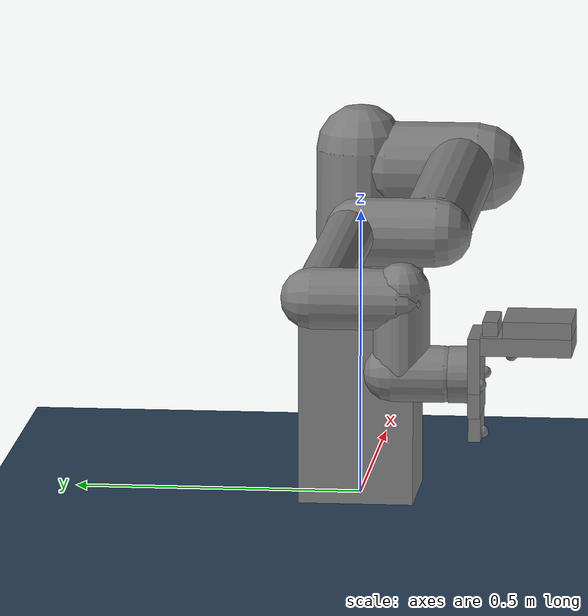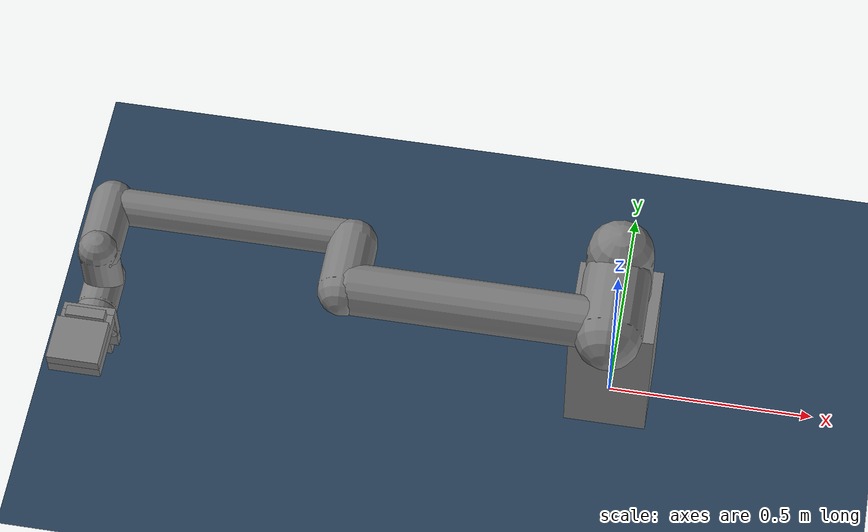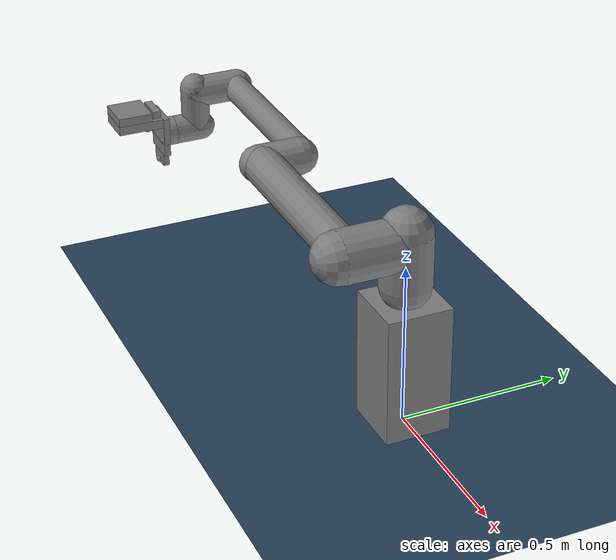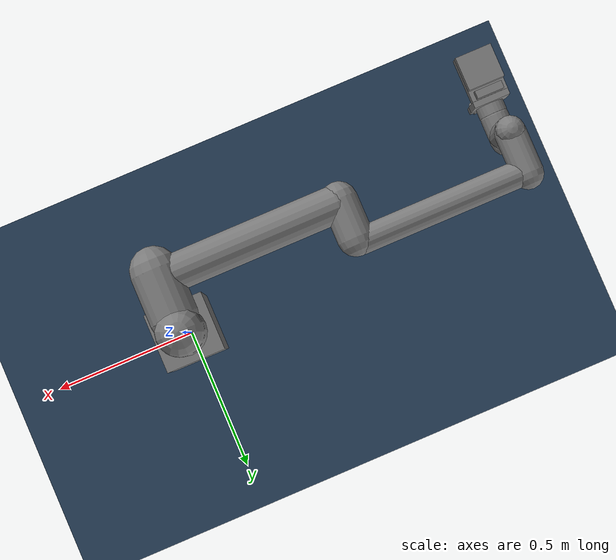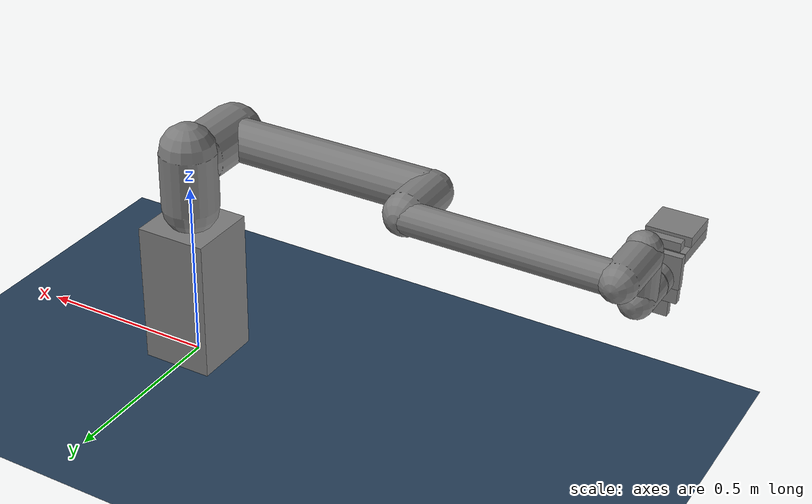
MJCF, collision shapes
<mujoco model="ur10e">
  <compiler angle="radian" meshdir="assets" autolimits="true"/>

  <option integrator="implicitfast" actuatorgroupdisable="1 2"/>

  <default>
    <default class="ur10e">
      <material specular="0.5" shininess="0.25"/>
      <joint axis="0 1 0" range="-6.28319 6.28319" armature="0.1"/>

      <default class="size4">
        <joint damping="10"/>

      </default>
      <default class="size3">
        <joint damping="5"/>

        <default class="size3_limited">
          <joint range="-3.1415 3.1415"/>

        </default>
      </default>
      <default class="size2">
        <joint damping="2"/>

      </default>
      <default class="visual">
        <geom type="mesh" contype="0" conaffinity="0" group="2"/>
      </default>
      <default class="collision">
        <geom type="capsule" group="3"/>
        <default class="eef_collision">
          <geom type="cylinder"/>
        </default>
      </default>
      <site size="0.001" rgba="0.5 0.5 0.5 0.3" group="4"/>
    </default>
  </default>

  <asset>
    <material class="ur10e" name="black" rgba="0.033 0.033 0.033 1"/>
    <material class="ur10e" name="jointgray" rgba="0.278 0.278 0.278 1"/>
    <material class="ur10e" name="linkgray" rgba="0.82 0.82 0.82 1"/>
    <material class="ur10e" name="urblue" rgba="0.49 0.678 0.8 1"/>

    <texture name="grid" type="2d" builtin="checker" width="512" height="512" rgb1=".1 .2 .3" rgb2=".2 .3 .4"/>
    <material name="grid" texture="grid" texrepeat="1 1" texuniform="true" reflectance=".2"/>

    <mesh file="base_0.obj"/>
    <mesh file="base_1.obj"/>
    <mesh file="shoulder_0.obj"/>
    <mesh file="shoulder_1.obj"/>
    <mesh file="shoulder_2.obj"/>
    <mesh file="upperarm_0.obj"/>
    <mesh file="upperarm_1.obj"/>
    <mesh file="upperarm_2.obj"/>
    <mesh file="upperarm_3.obj"/>
    <mesh file="forearm_0.obj"/>
    <mesh file="forearm_1.obj"/>
    <mesh file="forearm_2.obj"/>
    <mesh file="forearm_3.obj"/>
    <mesh file="wrist1_0.obj"/>
    <mesh file="wrist1_1.obj"/>
    <mesh file="wrist1_2.obj"/>
    <mesh file="wrist2_0.obj"/>
    <mesh file="wrist2_1.obj"/>
    <mesh file="wrist2_2.obj"/>
    <mesh file="wrist3.obj"/>
    <!-- edge finder tool with the D435 on top, edge_finder.stl (mm) decimated from 310k to 20k faces
         (MuJoCo reads at most 200k, surface within 0.32 mm of the original) -->
    <mesh file="edge_finder_sim.stl" scale="0.001 0.001 0.001"/>
  </asset>

  <worldbody>
    <geom name="floor" size="0 0 .05" type="plane" material="grid" condim="3"/>
    <light name="spotlight" mode="targetbodycom" target="wrist_2_link" pos="0 -1 2"/>
    <body name="platform">
      <geom name="platform" pos="0 0 0.2" size="0.1 0.1 0.2" type="box"/>
      <body name="base" quat="0 0 0 -1"  pos="0 0 0.4" childclass="ur10e">
        <inertial mass="4.0" pos="0 0 0" diaginertia="0.0061063308908 0.0061063308908 0.01125"/>
        <geom mesh="base_0" material="black" class="visual"/>
        <geom mesh="base_1" material="jointgray" class="visual"/>
        <body name="shoulder_link" pos="0 0 0.181">
          <inertial pos="0 0 0" mass="7.778" diaginertia="0.0314743 0.0314743 0.0218756"/>
          <joint name="shoulder_pan_joint" class="size4" axis="0 0 1"/>
          <geom mesh="shoulder_0" material="urblue" class="visual"/>
          <geom mesh="shoulder_1" material="black" class="visual"/>
          <geom mesh="shoulder_2" material="jointgray" class="visual"/>
          <geom class="collision" size="0.078 0.08" pos="0 0 -0.05"/>
          <body name="upper_arm_link" pos="0 0.176 0" quat="1 0 1 0">
            <inertial pos="0 0 0.3065" mass="12.93" diaginertia="0.423074 0.423074 0.0363656"/>
            <joint name="shoulder_lift_joint" class="size4"/>
            <geom mesh="upperarm_0" material="black" class="visual"/>
            <geom mesh="upperarm_1" material="jointgray" class="visual"/>
            <geom mesh="upperarm_2" material="urblue" class="visual"/>
            <geom mesh="upperarm_3" material="linkgray" class="visual"/>
            <geom class="collision" pos="0 -0.05 0" quat="1 1 0 0" size="0.078 0.08"/>
            <geom class="collision" size="0.06 0.3" pos="0 0 0.3"/>
            <body name="forearm_link" pos="0 -0.137 0.613">
              <inertial pos="0 0 0.2855" mass="3.87" diaginertia="0.11059 0.11059 0.0108844"/>
              <joint name="elbow_joint" class="size3_limited"/>
              <geom mesh="forearm_0" material="urblue" class="visual"/>
              <geom mesh="forearm_1" material="black" class="visual"/>
              <geom mesh="forearm_2" material="jointgray" class="visual"/>
              <geom mesh="forearm_3" material="linkgray" class="visual"/>
              <geom class="collision" pos="0 0.08 0" quat="1 1 0 0" size="0.058 0.065"/>
              <geom class="collision" size="0.043 0.28" pos="0 0 0.29"/>
              <body name="wrist_1_link" pos="0 0 0.571" quat="1 0 1 0">
                <inertial pos="0 0.135 0" quat="0.5 0.5 -0.5 0.5" mass="1.96"
                  diaginertia="0.0055125 0.00510825 0.00510825"/>
                <joint name="wrist_1_joint" class="size2"/>
                <geom mesh="wrist1_0" material="black" class="visual"/>
                <geom mesh="wrist1_1" material="urblue" class="visual"/>
                <geom mesh="wrist1_2" material="jointgray" class="visual"/>
                <geom class="collision" pos="0 0.06 0" quat="1 1 0 0" size="0.05 0.07"/>
                <body name="wrist_2_link" pos="0 0.135 0">
                  <inertial pos="0 0 0.12" quat="0.5 0.5 -0.5 0.5" mass="1.96"
                    diaginertia="0.0055125 0.00510825 0.00510825"/>
                  <joint name="wrist_2_joint" axis="0 0 1" class="size2"/>
                  <geom mesh="wrist2_0" material="black" class="visual"/>
                  <geom mesh="wrist2_1" material="urblue" class="visual"/>
                  <geom mesh="wrist2_2" material="jointgray" class="visual"/>
                  <geom class="collision" size="0.046 0.065" pos="0 0 0.05"/>
                  <geom class="collision" pos="0 0.028 0.12" quat="1 1 0 0" size="0.046 0.043"/>
                  <body name="wrist_3_link" pos="0 0 0.12">
                    <inertial pos="0 0.092 0" quat="0 1 -1 0" mass="0.202"
                      diaginertia="0.000204525 0.000144346 0.000144346"/>
                    <joint name="wrist_3_joint" class="size2"/>
                    <geom material="linkgray" mesh="wrist3" class="visual"/>
                    <geom class="eef_collision" pos="0 0.097 0" quat="1 1 0 0" size="0.046 0.02"/>
                    <site name="attachment_site" pos="0 0.1 0" quat="-1 1 0 0"/>
                    <!-- edge finder, a fixed body in UR's flange frame (attachment_site + 16.7 mm along z) -->
                    <body name="edge_finder" pos="0 0.1167 0" quat="-1 1 0 0">
                      <!-- payload estimated on the hardware by the UR arm (CoG and inertia in the flange frame) -->
                      <inertial mass="0.88" pos="0.003 0.040 0.040" diaginertia="0.001244 0.001244 0.001244"/>
                      <geom name="edge_finder" mesh="edge_finder_sim" material="jointgray" class="visual"
                        pos="0 0.06421 1.95571" quat="0 0 0.70711 0.70711"/>
                      <!-- collision boxes fitted to the CAD: mounting plate (tapering to the tip), shelf and
                           block on the camera side, D435 -->
                      <geom name="ef_plate" class="collision" type="box" pos="0 0.025 0.004" size="0.060 0.045 0.010"/>
                      <geom name="ef_plate_mid" class="collision" type="box" pos="0 -0.040 0.004" size="0.058 0.020 0.010"/>
                      <geom name="ef_plate_tip" class="collision" type="box" pos="0 -0.081 0.004" size="0.038 0.021 0.010"/>
                      <geom name="ef_shelf" class="collision" type="box" pos="0 0.05725 0.0873" size="0.060 0.01475 0.0733"/>
                      <geom name="ef_block" class="collision" type="box" pos="0 0.08545 0.1053" size="0.060 0.01345 0.0553"/>
                      <geom name="ef_camera" class="collision" type="box" pos="0 0.08265 0.029" size="0.045 0.01265 0.0125"/>
                      <!-- the six r = 10 mm probe balls that touch the beam -->
                      <geom name="ef_ball_1" class="collision" type="sphere" pos="0.050 -0.0058 0.014" size="0.010"/>
                      <geom name="ef_ball_2" class="collision" type="sphere" pos="-0.050 -0.0058 0.014" size="0.010"/>
                      <geom name="ef_ball_3" class="collision" type="sphere" pos="0 -0.0924 0.014" size="0.010"/>
                      <geom name="ef_ball_4" class="collision" type="sphere" pos="0.050 0.0442 0.064" size="0.010"/>
                      <geom name="ef_ball_5" class="collision" type="sphere" pos="-0.050 0.0442 0.064" size="0.010"/>
                      <geom name="ef_ball_6" class="collision" type="sphere" pos="0 0.0442 0.1506" size="0.010"/>
                    </body>
                  </body>
                </body>
              </body>
            </body>
          </body>
        </body>
        </body>
    </body>
  </worldbody>

  <actuator>
    <!-- Groups: 0 torque, 1 position, 2 velocity. Enable only one at a time. -->
    <motor name="shoulder_pan_torque" joint="shoulder_pan_joint" group="0" gear="1"
      ctrllimited="true" ctrlrange="-330 330" forcelimited="true" forcerange="-330 330"/>
    <motor name="shoulder_lift_torque" joint="shoulder_lift_joint" group="0" gear="1"
      ctrllimited="true" ctrlrange="-330 330" forcelimited="true" forcerange="-330 330"/>
    <motor name="elbow_torque" joint="elbow_joint" group="0" gear="1"
      ctrllimited="true" ctrlrange="-150 150" forcelimited="true" forcerange="-150 150"/>
    <motor name="wrist_1_torque" joint="wrist_1_joint" group="0" gear="1"
      ctrllimited="true" ctrlrange="-56 56" forcelimited="true" forcerange="-56 56"/>
    <motor name="wrist_2_torque" joint="wrist_2_joint" group="0" gear="1"
      ctrllimited="true" ctrlrange="-56 56" forcelimited="true" forcerange="-56 56"/>
    <motor name="wrist_3_torque" joint="wrist_3_joint" group="0" gear="1"
      ctrllimited="true" ctrlrange="-56 56" forcelimited="true" forcerange="-56 56"/>
    <position name="shoulder_pan_position" joint="shoulder_pan_joint" group="1" gear="1" kp="5000" kv="500"
      ctrllimited="true" ctrlrange="-6.2831 6.2831" forcelimited="true" forcerange="-330 330"/>
    <position name="shoulder_lift_position" joint="shoulder_lift_joint" group="1" gear="1" kp="5000" kv="500"
      ctrllimited="true" ctrlrange="-6.2831 6.2831" forcelimited="true" forcerange="-330 330"/>
    <position name="elbow_position" joint="elbow_joint" group="1" gear="1" kp="5000" kv="500"
      ctrllimited="true" ctrlrange="-3.1415 3.1415" forcelimited="true" forcerange="-150 150"/>
    <position name="wrist_1_position" joint="wrist_1_joint" group="1" gear="1" kp="5000" kv="500"
      ctrllimited="true" ctrlrange="-6.2831 6.2831" forcelimited="true" forcerange="-56 56"/>
    <position name="wrist_2_position" joint="wrist_2_joint" group="1" gear="1" kp="5000" kv="500"
      ctrllimited="true" ctrlrange="-6.2831 6.2831" forcelimited="true" forcerange="-56 56"/>
    <position name="wrist_3_position" joint="wrist_3_joint" group="1" gear="1" kp="5000" kv="500"
      ctrllimited="true" ctrlrange="-6.2831 6.2831" forcelimited="true" forcerange="-56 56"/>
    <velocity name="shoulder_pan_velocity" joint="shoulder_pan_joint" group="2" gear="1" kv="500"
      ctrllimited="true" ctrlrange="-1.0 1.0" forcelimited="true" forcerange="-330 330"/>
    <velocity name="shoulder_lift_velocity" joint="shoulder_lift_joint" group="2" gear="1" kv="500"
      ctrllimited="true" ctrlrange="-1.0 1.0" forcelimited="true" forcerange="-330 330"/>
    <velocity name="elbow_velocity" joint="elbow_joint" group="2" gear="1" kv="500"
      ctrllimited="true" ctrlrange="-1.0 1.0" forcelimited="true" forcerange="-150 150"/>
    <velocity name="wrist_1_velocity" joint="wrist_1_joint" group="2" gear="1" kv="500"
      ctrllimited="true" ctrlrange="-1.0 1.0" forcelimited="true" forcerange="-56 56"/>
    <velocity name="wrist_2_velocity" joint="wrist_2_joint" group="2" gear="1" kv="500"
      ctrllimited="true" ctrlrange="-1.0 1.0" forcelimited="true" forcerange="-56 56"/>
    <velocity name="wrist_3_velocity" joint="wrist_3_joint" group="2" gear="1" kv="500"
      ctrllimited="true" ctrlrange="-1.0 1.0" forcelimited="true" forcerange="-56 56"/>
  </actuator>

  <keyframe>
    <key name="home" qpos="-1.5708 -1.5708 1.5708 -1.5708 -1.5708 0" ctrl="0 0 0 0 0 0 -1.5708 -1.5708 1.5708 -1.5708 -1.5708 0 0 0 0 0 0 0"/>
  </keyframe>
</mujoco>
